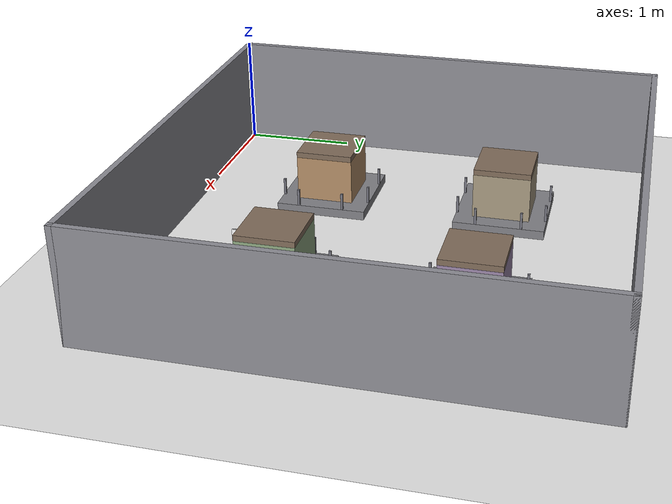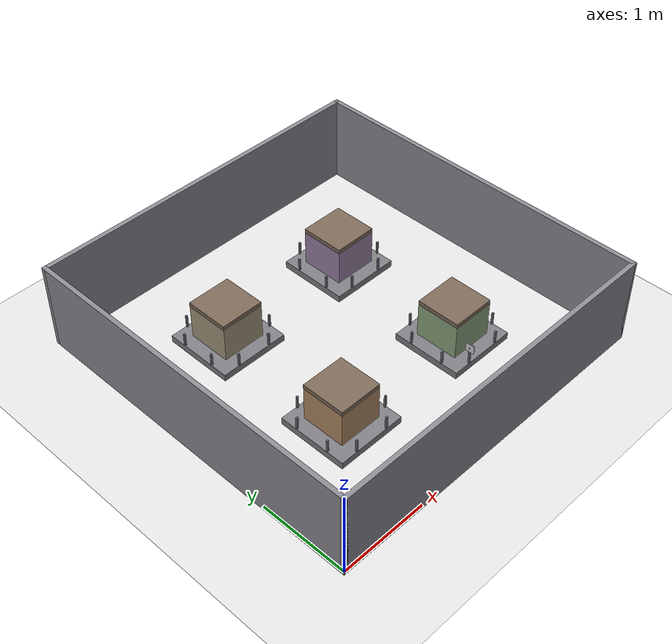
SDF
<?xml version="1.0" ?>
<sdf version="1.6">
  <world name="polygon_5x5_cells">
    <plugin filename="gz-sim-physics-system" name="gz::sim::systems::Physics"/>
    <plugin filename="gz-sim-user-commands-system" name="gz::sim::systems::UserCommands"/>
    <plugin filename="gz-sim-scene-broadcaster-system" name="gz::sim::systems::SceneBroadcaster"/>
    <plugin filename="gz-sim-sensors-system" name="gz::sim::systems::Sensors">
      <render_engine>ogre2</render_engine>
    </plugin>
    <!-- Обновляет IMU sensors, добавленные к моделям роботов. -->
    <plugin filename="gz-sim-imu-system" name="gz::sim::systems::Imu"/>

    <!-- Начальный вид: позиция над (2,2), default камера смотрит +X; pitch +pi/2 вокруг Y -> взгляд вдоль -Z (строго сверху). -->
    <gui fullscreen="0">
      <camera name="user_camera">
        <pose>2.0 2.0 12.0 0.0 1.570796327 0.0</pose>
      </camera>
    </gui>
    <physics name="1ms" type="ode">
      <max_step_size>0.001</max_step_size>
      <real_time_factor>1.0</real_time_factor>
      <real_time_update_rate>1000</real_time_update_rate>
    </physics>
    <scene>
      <ambient>0.5 0.5 0.5 1</ambient>
      <background>0.85 0.88 0.92 1</background>
      <shadows>true</shadows>
    </scene>
    <gravity>0 0 -9.81</gravity>

    <light name="sun" type="directional">
      <pose>0 0 20 0 0 0</pose>
      <cast_shadows>true</cast_shadows>
      <diffuse>0.8 0.8 0.8 1</diffuse>
      <specular>0.2 0.2 0.2 1</specular>
      <attenuation>
        <range>1000</range>
        <constant>0.9</constant>
        <linear>0.01</linear>
        <quadratic>0.001</quadratic>
      </attenuation>
      <direction>-0.5 0.1 -0.9</direction>
    </light>

    <model name="ground_plane">
      <static>true</static>
      <link name="link">
        <collision name="collision">
          <geometry>
            <plane>
              <normal>0 0 1</normal>
              <size>40 40</size>
            </plane>
          </geometry>
        </collision>
        <visual name="visual">
          <geometry>
            <plane>
              <normal>0 0 1</normal>
              <size>40 40</size>
            </plane>
          </geometry>
          <material>
            <ambient>0.85 0.85 0.85 1</ambient>
            <diffuse>0.9 0.9 0.9 1</diffuse>
          </material>
        </visual>
      </link>
    </model>

    <!-- ========== Периметр: квадрат 4.0 x 4.0 м, толщина стены 0.05 м, высота 1.0 м ========== -->
    <model name="wall_south">
      <static>true</static>
      <pose>2 0 0.5 0 0 0</pose>
      <link name="link">
        <collision name="col">
          <geometry><box><size>4.05 0.05 1.0</size></box></geometry>
        </collision>
        <visual name="vis">
          <geometry><box><size>4.05 0.05 1.0</size></box></geometry>
          <material><ambient>0.45 0.45 0.48 1</ambient><diffuse>0.55 0.55 0.58 1</diffuse></material>
        </visual>
      </link>
    </model>
    <model name="wall_north">
      <static>true</static>
      <pose>2 4 0.5 0 0 0</pose>
      <link name="link">
        <collision name="col">
          <geometry><box><size>4.05 0.05 1.0</size></box></geometry>
        </collision>
        <visual name="vis">
          <geometry><box><size>4.05 0.05 1.0</size></box></geometry>
          <material><ambient>0.45 0.45 0.48 1</ambient><diffuse>0.55 0.55 0.58 1</diffuse></material>
        </visual>
      </link>
    </model>
    <model name="wall_west">
      <static>true</static>
      <pose>0 2 0.5 0 0 0</pose>
      <link name="link">
        <collision name="col">
          <geometry><box><size>0.05 4.05 1.0</size></box></geometry>
        </collision>
        <visual name="vis">
          <geometry><box><size>0.05 4.05 1.0</size></box></geometry>
          <material><ambient>0.45 0.45 0.48 1</ambient><diffuse>0.55 0.55 0.58 1</diffuse></material>
        </visual>
      </link>
    </model>
    <model name="wall_east">
      <static>true</static>
      <pose>4 2 0.5 0 0 0</pose>
      <link name="link">
        <collision name="col">
          <geometry><box><size>0.05 4.05 1.0</size></box></geometry>
        </collision>
        <visual name="vis">
          <geometry><box><size>0.05 4.05 1.0</size></box></geometry>
          <material><ambient>0.45 0.45 0.48 1</ambient><diffuse>0.55 0.55 0.58 1</diffuse></material>
        </visual>
      </link>
    </model>

    <!-- Шаг центров 1.6 м: постаменты 0.8 м дают зазор 0.8 м -->
    <!-- Постамент 0.8 x 0.8 x 0.08, центр Z = 0.04 -->
    <!-- Здание 0.5 x 0.5 x 0.4, низ на z=0.08, центр z = 0.28 -->
    <!-- Парапет 0.5 x 0.5 x 0.05, низ на z=0.48, центр z = 0.505 -->

    <model name="pedestal_sw">
      <static>true</static>
      <pose>1.2 1.2 0.04 0 0 0</pose>
      <link name="link">
        <collision name="col"><geometry><box><size>0.8 0.8 0.08</size></box></geometry></collision>
        <visual name="vis">
          <geometry><box><size>0.8 0.8 0.08</size></box></geometry>
          <material><ambient>0.35 0.35 0.38 1</ambient><diffuse>0.5 0.5 0.52 1</diffuse></material>
        </visual>
      </link>
    </model>
    <model name="sign_mounts_sw">
      <static>true</static>
      <pose>1.2 1.2 0 0 0 0</pose>
      <link name="link">
        <collision name="south_left_col"><pose>-0.2 -0.39 0.155 0 0 0</pose><geometry><box><size>0.02 0.02 0.15</size></box></geometry></collision>
        <collision name="south_right_col"><pose>0.2 -0.39 0.155 0 0 0</pose><geometry><box><size>0.02 0.02 0.15</size></box></geometry></collision>
        <collision name="north_left_col"><pose>-0.2 0.39 0.155 0 0 0</pose><geometry><box><size>0.02 0.02 0.15</size></box></geometry></collision>
        <collision name="north_right_col"><pose>0.2 0.39 0.155 0 0 0</pose><geometry><box><size>0.02 0.02 0.15</size></box></geometry></collision>
        <collision name="west_bottom_col"><pose>-0.39 -0.2 0.155 0 0 0</pose><geometry><box><size>0.02 0.02 0.15</size></box></geometry></collision>
        <collision name="west_top_col"><pose>-0.39 0.2 0.155 0 0 0</pose><geometry><box><size>0.02 0.02 0.15</size></box></geometry></collision>
        <collision name="east_bottom_col"><pose>0.39 -0.2 0.155 0 0 0</pose><geometry><box><size>0.02 0.02 0.15</size></box></geometry></collision>
        <collision name="east_top_col"><pose>0.39 0.2 0.155 0 0 0</pose><geometry><box><size>0.02 0.02 0.15</size></box></geometry></collision>
        <visual name="south_left_vis"><pose>-0.2 -0.39 0.155 0 0 0</pose><geometry><box><size>0.02 0.02 0.15</size></box></geometry><material><ambient>0.32 0.32 0.34 1</ambient><diffuse>0.46 0.46 0.5 1</diffuse></material></visual>
        <visual name="south_right_vis"><pose>0.2 -0.39 0.155 0 0 0</pose><geometry><box><size>0.02 0.02 0.15</size></box></geometry><material><ambient>0.32 0.32 0.34 1</ambient><diffuse>0.46 0.46 0.5 1</diffuse></material></visual>
        <visual name="north_left_vis"><pose>-0.2 0.39 0.155 0 0 0</pose><geometry><box><size>0.02 0.02 0.15</size></box></geometry><material><ambient>0.32 0.32 0.34 1</ambient><diffuse>0.46 0.46 0.5 1</diffuse></material></visual>
        <visual name="north_right_vis"><pose>0.2 0.39 0.155 0 0 0</pose><geometry><box><size>0.02 0.02 0.15</size></box></geometry><material><ambient>0.32 0.32 0.34 1</ambient><diffuse>0.46 0.46 0.5 1</diffuse></material></visual>
        <visual name="west_bottom_vis"><pose>-0.39 -0.2 0.155 0 0 0</pose><geometry><box><size>0.02 0.02 0.15</size></box></geometry><material><ambient>0.32 0.32 0.34 1</ambient><diffuse>0.46 0.46 0.5 1</diffuse></material></visual>
        <visual name="west_top_vis"><pose>-0.39 0.2 0.155 0 0 0</pose><geometry><box><size>0.02 0.02 0.15</size></box></geometry><material><ambient>0.32 0.32 0.34 1</ambient><diffuse>0.46 0.46 0.5 1</diffuse></material></visual>
        <visual name="east_bottom_vis"><pose>0.39 -0.2 0.155 0 0 0</pose><geometry><box><size>0.02 0.02 0.15</size></box></geometry><material><ambient>0.32 0.32 0.34 1</ambient><diffuse>0.46 0.46 0.5 1</diffuse></material></visual>
        <visual name="east_top_vis"><pose>0.39 0.2 0.155 0 0 0</pose><geometry><box><size>0.02 0.02 0.15</size></box></geometry><material><ambient>0.32 0.32 0.34 1</ambient><diffuse>0.46 0.46 0.5 1</diffuse></material></visual>
      </link>
    </model>
    <model name="building_sw">
      <static>true</static>
      <pose>1.2 1.2 0.28 0 0 0</pose>
      <link name="link">
        <collision name="col"><geometry><box><size>0.5 0.5 0.4</size></box></geometry></collision>
        <visual name="vis">
          <geometry><box><size>0.5 0.5 0.4</size></box></geometry>
          <material><ambient>0.55 0.45 0.35 1</ambient><diffuse>0.7 0.55 0.4 1</diffuse></material>
        </visual>
      </link>
    </model>
    <model name="parapet_sw">
      <static>true</static>
      <pose>1.2 1.2 0.505 0 0 0</pose>
      <link name="link">
        <collision name="col"><geometry><box><size>0.5 0.5 0.05</size></box></geometry></collision>
        <visual name="vis">
          <geometry><box><size>0.5 0.5 0.05</size></box></geometry>
          <material><ambient>0.4 0.35 0.3 1</ambient><diffuse>0.5 0.42 0.35 1</diffuse></material>
        </visual>
      </link>
    </model>

    <model name="pedestal_se">
      <static>true</static>
      <pose>2.8 1.2 0.04 0 0 0</pose>
      <link name="link">
        <collision name="col"><geometry><box><size>0.8 0.8 0.08</size></box></geometry></collision>
        <visual name="vis">
          <geometry><box><size>0.8 0.8 0.08</size></box></geometry>
          <material><ambient>0.35 0.35 0.38 1</ambient><diffuse>0.5 0.5 0.52 1</diffuse></material>
        </visual>
      </link>
    </model>
    <model name="sign_mounts_se">
      <static>true</static>
      <pose>2.8 1.2 0 0 0 0</pose>
      <link name="link">
        <collision name="south_left_col"><pose>-0.2 -0.39 0.155 0 0 0</pose><geometry><box><size>0.02 0.02 0.15</size></box></geometry></collision>
        <collision name="south_right_col"><pose>0.2 -0.39 0.155 0 0 0</pose><geometry><box><size>0.02 0.02 0.15</size></box></geometry></collision>
        <collision name="north_left_col"><pose>-0.2 0.39 0.155 0 0 0</pose><geometry><box><size>0.02 0.02 0.15</size></box></geometry></collision>
        <collision name="north_right_col"><pose>0.2 0.39 0.155 0 0 0</pose><geometry><box><size>0.02 0.02 0.15</size></box></geometry></collision>
        <collision name="west_bottom_col"><pose>-0.39 -0.2 0.155 0 0 0</pose><geometry><box><size>0.02 0.02 0.15</size></box></geometry></collision>
        <collision name="west_top_col"><pose>-0.39 0.2 0.155 0 0 0</pose><geometry><box><size>0.02 0.02 0.15</size></box></geometry></collision>
        <collision name="east_bottom_col"><pose>0.39 -0.2 0.155 0 0 0</pose><geometry><box><size>0.02 0.02 0.15</size></box></geometry></collision>
        <collision name="east_top_col"><pose>0.39 0.2 0.155 0 0 0</pose><geometry><box><size>0.02 0.02 0.15</size></box></geometry></collision>
        <visual name="south_left_vis"><pose>-0.2 -0.39 0.155 0 0 0</pose><geometry><box><size>0.02 0.02 0.15</size></box></geometry><material><ambient>0.32 0.32 0.34 1</ambient><diffuse>0.46 0.46 0.5 1</diffuse></material></visual>
        <visual name="south_right_vis"><pose>0.2 -0.39 0.155 0 0 0</pose><geometry><box><size>0.02 0.02 0.15</size></box></geometry><material><ambient>0.32 0.32 0.34 1</ambient><diffuse>0.46 0.46 0.5 1</diffuse></material></visual>
        <visual name="north_left_vis"><pose>-0.2 0.39 0.155 0 0 0</pose><geometry><box><size>0.02 0.02 0.15</size></box></geometry><material><ambient>0.32 0.32 0.34 1</ambient><diffuse>0.46 0.46 0.5 1</diffuse></material></visual>
        <visual name="north_right_vis"><pose>0.2 0.39 0.155 0 0 0</pose><geometry><box><size>0.02 0.02 0.15</size></box></geometry><material><ambient>0.32 0.32 0.34 1</ambient><diffuse>0.46 0.46 0.5 1</diffuse></material></visual>
        <visual name="west_bottom_vis"><pose>-0.39 -0.2 0.155 0 0 0</pose><geometry><box><size>0.02 0.02 0.15</size></box></geometry><material><ambient>0.32 0.32 0.34 1</ambient><diffuse>0.46 0.46 0.5 1</diffuse></material></visual>
        <visual name="west_top_vis"><pose>-0.39 0.2 0.155 0 0 0</pose><geometry><box><size>0.02 0.02 0.15</size></box></geometry><material><ambient>0.32 0.32 0.34 1</ambient><diffuse>0.46 0.46 0.5 1</diffuse></material></visual>
        <visual name="east_bottom_vis"><pose>0.39 -0.2 0.155 0 0 0</pose><geometry><box><size>0.02 0.02 0.15</size></box></geometry><material><ambient>0.32 0.32 0.34 1</ambient><diffuse>0.46 0.46 0.5 1</diffuse></material></visual>
        <visual name="east_top_vis"><pose>0.39 0.2 0.155 0 0 0</pose><geometry><box><size>0.02 0.02 0.15</size></box></geometry><material><ambient>0.32 0.32 0.34 1</ambient><diffuse>0.46 0.46 0.5 1</diffuse></material></visual>
      </link>
    </model>
    <model name="traffic_sign_turn_right_4_3">
      <static>true</static>
      <pose>2.6 0.81 0.28 0 0 1.570796327</pose>
      <link name="link">
        <collision name="panel_col">
          <pose>0 -0.006 0 0 0 0</pose>
          <geometry><box><size>0.1 0.002 0.1</size></box></geometry>
        </collision>
        <visual name="front_vis">
          <pose>0 -0.006 0 0 0 0</pose>
          <geometry><box><size>0.1 0.002 0.1</size></box></geometry>
          <material>
            <ambient>1 1 1 1</ambient>
            <diffuse>1 1 1 1</diffuse>
            <specular>0.05 0.05 0.05 1</specular>
            <pbr>
              <metal>
                <albedo_map>/workspace/worlds/assets/signs/turn_right_100.png</albedo_map>
              </metal>
            </pbr>
          </material>
        </visual>
        <visual name="back_vis">
          <pose>0 0.006 0 0 0 0</pose>
          <geometry><box><size>0.1 0.002 0.1</size></box></geometry>
          <material>
            <ambient>0.7 0.7 0.72 1</ambient>
            <diffuse>0.82 0.82 0.84 1</diffuse>
            <specular>0.02 0.02 0.02 1</specular>
          </material>
        </visual>
        <visual name="pole_cap_vis">
          <pose>0 0 0 0 0 0</pose>
          <geometry><box><size>0.022 0.022 0.005</size></box></geometry>
          <material>
            <ambient>0.32 0.32 0.34 1</ambient>
            <diffuse>0.46 0.46 0.5 1</diffuse>
          </material>
        </visual>
      </link>
    </model>
    <model name="building_se">
      <static>true</static>
      <pose>2.8 1.2 0.28 0 0 0</pose>
      <link name="link">
        <collision name="col"><geometry><box><size>0.5 0.5 0.4</size></box></geometry></collision>
        <visual name="vis">
          <geometry><box><size>0.5 0.5 0.4</size></box></geometry>
          <material><ambient>0.45 0.5 0.4 1</ambient><diffuse>0.55 0.65 0.5 1</diffuse></material>
        </visual>
      </link>
    </model>
    <model name="parapet_se">
      <static>true</static>
      <pose>2.8 1.2 0.505 0 0 0</pose>
      <link name="link">
        <collision name="col"><geometry><box><size>0.5 0.5 0.05</size></box></geometry></collision>
        <visual name="vis">
          <geometry><box><size>0.5 0.5 0.05</size></box></geometry>
          <material><ambient>0.4 0.35 0.3 1</ambient><diffuse>0.5 0.42 0.35 1</diffuse></material>
        </visual>
      </link>
    </model>

    <model name="pedestal_nw">
      <static>true</static>
      <pose>1.2 2.8 0.04 0 0 0</pose>
      <link name="link">
        <collision name="col"><geometry><box><size>0.8 0.8 0.08</size></box></geometry></collision>
        <visual name="vis">
          <geometry><box><size>0.8 0.8 0.08</size></box></geometry>
          <material><ambient>0.35 0.35 0.38 1</ambient><diffuse>0.5 0.5 0.52 1</diffuse></material>
        </visual>
      </link>
    </model>
    <model name="sign_mounts_nw">
      <static>true</static>
      <pose>1.2 2.8 0 0 0 0</pose>
      <link name="link">
        <collision name="south_left_col"><pose>-0.2 -0.39 0.155 0 0 0</pose><geometry><box><size>0.02 0.02 0.15</size></box></geometry></collision>
        <collision name="south_right_col"><pose>0.2 -0.39 0.155 0 0 0</pose><geometry><box><size>0.02 0.02 0.15</size></box></geometry></collision>
        <collision name="north_left_col"><pose>-0.2 0.39 0.155 0 0 0</pose><geometry><box><size>0.02 0.02 0.15</size></box></geometry></collision>
        <collision name="north_right_col"><pose>0.2 0.39 0.155 0 0 0</pose><geometry><box><size>0.02 0.02 0.15</size></box></geometry></collision>
        <collision name="west_bottom_col"><pose>-0.39 -0.2 0.155 0 0 0</pose><geometry><box><size>0.02 0.02 0.15</size></box></geometry></collision>
        <collision name="west_top_col"><pose>-0.39 0.2 0.155 0 0 0</pose><geometry><box><size>0.02 0.02 0.15</size></box></geometry></collision>
        <collision name="east_bottom_col"><pose>0.39 -0.2 0.155 0 0 0</pose><geometry><box><size>0.02 0.02 0.15</size></box></geometry></collision>
        <collision name="east_top_col"><pose>0.39 0.2 0.155 0 0 0</pose><geometry><box><size>0.02 0.02 0.15</size></box></geometry></collision>
        <visual name="south_left_vis"><pose>-0.2 -0.39 0.155 0 0 0</pose><geometry><box><size>0.02 0.02 0.15</size></box></geometry><material><ambient>0.32 0.32 0.34 1</ambient><diffuse>0.46 0.46 0.5 1</diffuse></material></visual>
        <visual name="south_right_vis"><pose>0.2 -0.39 0.155 0 0 0</pose><geometry><box><size>0.02 0.02 0.15</size></box></geometry><material><ambient>0.32 0.32 0.34 1</ambient><diffuse>0.46 0.46 0.5 1</diffuse></material></visual>
        <visual name="north_left_vis"><pose>-0.2 0.39 0.155 0 0 0</pose><geometry><box><size>0.02 0.02 0.15</size></box></geometry><material><ambient>0.32 0.32 0.34 1</ambient><diffuse>0.46 0.46 0.5 1</diffuse></material></visual>
        <visual name="north_right_vis"><pose>0.2 0.39 0.155 0 0 0</pose><geometry><box><size>0.02 0.02 0.15</size></box></geometry><material><ambient>0.32 0.32 0.34 1</ambient><diffuse>0.46 0.46 0.5 1</diffuse></material></visual>
        <visual name="west_bottom_vis"><pose>-0.39 -0.2 0.155 0 0 0</pose><geometry><box><size>0.02 0.02 0.15</size></box></geometry><material><ambient>0.32 0.32 0.34 1</ambient><diffuse>0.46 0.46 0.5 1</diffuse></material></visual>
        <visual name="west_top_vis"><pose>-0.39 0.2 0.155 0 0 0</pose><geometry><box><size>0.02 0.02 0.15</size></box></geometry><material><ambient>0.32 0.32 0.34 1</ambient><diffuse>0.46 0.46 0.5 1</diffuse></material></visual>
        <visual name="east_bottom_vis"><pose>0.39 -0.2 0.155 0 0 0</pose><geometry><box><size>0.02 0.02 0.15</size></box></geometry><material><ambient>0.32 0.32 0.34 1</ambient><diffuse>0.46 0.46 0.5 1</diffuse></material></visual>
        <visual name="east_top_vis"><pose>0.39 0.2 0.155 0 0 0</pose><geometry><box><size>0.02 0.02 0.15</size></box></geometry><material><ambient>0.32 0.32 0.34 1</ambient><diffuse>0.46 0.46 0.5 1</diffuse></material></visual>
      </link>
    </model>
    <model name="building_nw">
      <static>true</static>
      <pose>1.2 2.8 0.28 0 0 0</pose>
      <link name="link">
        <collision name="col"><geometry><box><size>0.5 0.5 0.4</size></box></geometry></collision>
        <visual name="vis">
          <geometry><box><size>0.5 0.5 0.4</size></box></geometry>
          <material><ambient>0.5 0.48 0.42 1</ambient><diffuse>0.65 0.6 0.5 1</diffuse></material>
        </visual>
      </link>
    </model>
    <model name="parapet_nw">
      <static>true</static>
      <pose>1.2 2.8 0.505 0 0 0</pose>
      <link name="link">
        <collision name="col"><geometry><box><size>0.5 0.5 0.05</size></box></geometry></collision>
        <visual name="vis">
          <geometry><box><size>0.5 0.5 0.05</size></box></geometry>
          <material><ambient>0.4 0.35 0.3 1</ambient><diffuse>0.5 0.42 0.35 1</diffuse></material>
        </visual>
      </link>
    </model>

    <model name="pedestal_ne">
      <static>true</static>
      <pose>2.8 2.8 0.04 0 0 0</pose>
      <link name="link">
        <collision name="col"><geometry><box><size>0.8 0.8 0.08</size></box></geometry></collision>
        <visual name="vis">
          <geometry><box><size>0.8 0.8 0.08</size></box></geometry>
          <material><ambient>0.35 0.35 0.38 1</ambient><diffuse>0.5 0.5 0.52 1</diffuse></material>
        </visual>
      </link>
    </model>
    <model name="sign_mounts_ne">
      <static>true</static>
      <pose>2.8 2.8 0 0 0 0</pose>
      <link name="link">
        <collision name="south_left_col"><pose>-0.2 -0.39 0.155 0 0 0</pose><geometry><box><size>0.02 0.02 0.15</size></box></geometry></collision>
        <collision name="south_right_col"><pose>0.2 -0.39 0.155 0 0 0</pose><geometry><box><size>0.02 0.02 0.15</size></box></geometry></collision>
        <collision name="north_left_col"><pose>-0.2 0.39 0.155 0 0 0</pose><geometry><box><size>0.02 0.02 0.15</size></box></geometry></collision>
        <collision name="north_right_col"><pose>0.2 0.39 0.155 0 0 0</pose><geometry><box><size>0.02 0.02 0.15</size></box></geometry></collision>
        <collision name="west_bottom_col"><pose>-0.39 -0.2 0.155 0 0 0</pose><geometry><box><size>0.02 0.02 0.15</size></box></geometry></collision>
        <collision name="west_top_col"><pose>-0.39 0.2 0.155 0 0 0</pose><geometry><box><size>0.02 0.02 0.15</size></box></geometry></collision>
        <collision name="east_bottom_col"><pose>0.39 -0.2 0.155 0 0 0</pose><geometry><box><size>0.02 0.02 0.15</size></box></geometry></collision>
        <collision name="east_top_col"><pose>0.39 0.2 0.155 0 0 0</pose><geometry><box><size>0.02 0.02 0.15</size></box></geometry></collision>
        <visual name="south_left_vis"><pose>-0.2 -0.39 0.155 0 0 0</pose><geometry><box><size>0.02 0.02 0.15</size></box></geometry><material><ambient>0.32 0.32 0.34 1</ambient><diffuse>0.46 0.46 0.5 1</diffuse></material></visual>
        <visual name="south_right_vis"><pose>0.2 -0.39 0.155 0 0 0</pose><geometry><box><size>0.02 0.02 0.15</size></box></geometry><material><ambient>0.32 0.32 0.34 1</ambient><diffuse>0.46 0.46 0.5 1</diffuse></material></visual>
        <visual name="north_left_vis"><pose>-0.2 0.39 0.155 0 0 0</pose><geometry><box><size>0.02 0.02 0.15</size></box></geometry><material><ambient>0.32 0.32 0.34 1</ambient><diffuse>0.46 0.46 0.5 1</diffuse></material></visual>
        <visual name="north_right_vis"><pose>0.2 0.39 0.155 0 0 0</pose><geometry><box><size>0.02 0.02 0.15</size></box></geometry><material><ambient>0.32 0.32 0.34 1</ambient><diffuse>0.46 0.46 0.5 1</diffuse></material></visual>
        <visual name="west_bottom_vis"><pose>-0.39 -0.2 0.155 0 0 0</pose><geometry><box><size>0.02 0.02 0.15</size></box></geometry><material><ambient>0.32 0.32 0.34 1</ambient><diffuse>0.46 0.46 0.5 1</diffuse></material></visual>
        <visual name="west_top_vis"><pose>-0.39 0.2 0.155 0 0 0</pose><geometry><box><size>0.02 0.02 0.15</size></box></geometry><material><ambient>0.32 0.32 0.34 1</ambient><diffuse>0.46 0.46 0.5 1</diffuse></material></visual>
        <visual name="east_bottom_vis"><pose>0.39 -0.2 0.155 0 0 0</pose><geometry><box><size>0.02 0.02 0.15</size></box></geometry><material><ambient>0.32 0.32 0.34 1</ambient><diffuse>0.46 0.46 0.5 1</diffuse></material></visual>
        <visual name="east_top_vis"><pose>0.39 0.2 0.155 0 0 0</pose><geometry><box><size>0.02 0.02 0.15</size></box></geometry><material><ambient>0.32 0.32 0.34 1</ambient><diffuse>0.46 0.46 0.5 1</diffuse></material></visual>
      </link>
    </model>
    <model name="building_ne">
      <static>true</static>
      <pose>2.8 2.8 0.28 0 0 0</pose>
      <link name="link">
        <collision name="col"><geometry><box><size>0.5 0.5 0.4</size></box></geometry></collision>
        <visual name="vis">
          <geometry><box><size>0.5 0.5 0.4</size></box></geometry>
          <material><ambient>0.48 0.42 0.5 1</ambient><diffuse>0.6 0.52 0.65 1</diffuse></material>
        </visual>
      </link>
    </model>
    <model name="parapet_ne">
      <static>true</static>
      <pose>2.8 2.8 0.505 0 0 0</pose>
      <link name="link">
        <collision name="col"><geometry><box><size>0.5 0.5 0.05</size></box></geometry></collision>
        <visual name="vis">
          <geometry><box><size>0.5 0.5 0.05</size></box></geometry>
          <material><ambient>0.4 0.35 0.3 1</ambient><diffuse>0.5 0.42 0.35 1</diffuse></material>
        </visual>
      </link>
    </model>

  </world>
</sdf>
